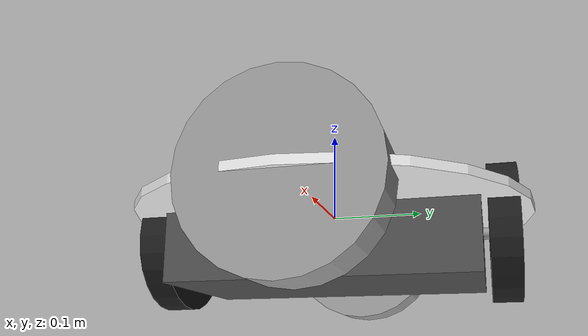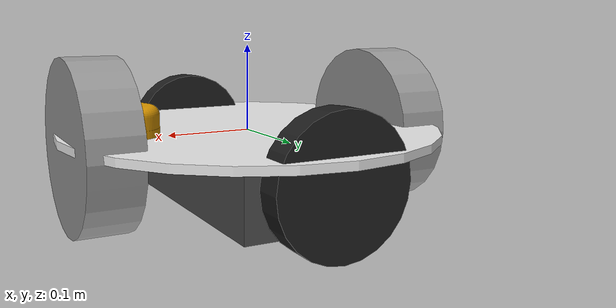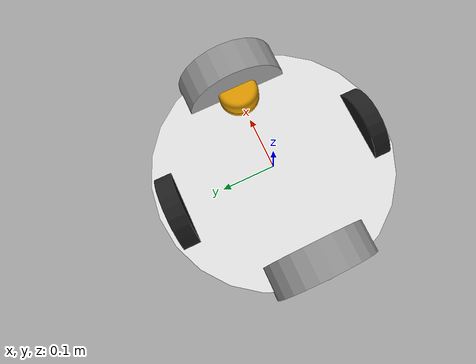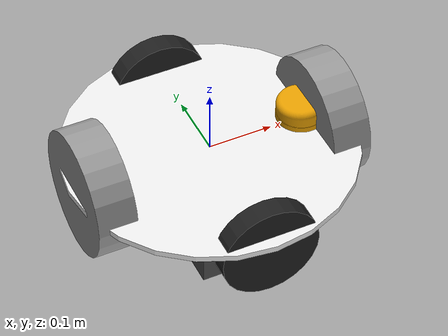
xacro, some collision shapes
<?xml version='1.0'?>

<robot name="myrobot" xmlns:xacro="http://www.ros.org/wiki/xacro">

  <xacro:include filename="$(find abrobot_description)/urdf/robot2.gazebo" />
  <xacro:include filename="$(find abrobot_description)/urdf/materials.xacro" />

  <!-- Base Robotic -->
  <link name="base_link">
    <inertial>
      <mass value="2" />
      <origin xyz="0 0 0.0" />
      <inertia ixx="0.01" ixy="0.0" ixz="0.0"
        iyy="0.01" iyz="0.0" izz="0.5" />
    </inertial>

      <visual>
        <origin xyz="0 0 0" rpy="0 0 0" />
        <geometry>
          <cylinder length="0.0095" radius="0.2245"/>
        </geometry>
        <material name ="White" />
      </visual>

      <collision>
        <origin xyz="0 0 0" rpy="0 0 0" />
        <geometry>
          <cylinder length="0.0095" radius="0.2245"/>
        </geometry>
      </collision>
  </link>

  <!-- Bateria -->
  <link name="battery_box">
    <inertial>
      <mass value="0.001" />
      <origin xyz="0 0 0" />
      <inertia ixx="0.0001" ixy="0.0" ixz="0.0"
        iyy="0.0001" iyz="0.0"
        izz="0.0001" />
    </inertial>

      <visual>
        <origin xyz="0 0 0" rpy="0 0 0" />
        <geometry>
          <box size="0.1778 0.3366 0.0762" />
        </geometry>
        <material name ="veryDarkGrey" />
      </visual>

      <collision>
        <origin xyz="0 0 0" rpy="0 0 0" />
        <geometry>
          <box size="0.1778 0.3366 0.0762" />
        </geometry>
      </collision>
  </link>

  <joint name="battery_box_joint" type="fixed">
    <origin xyz="0 0 -0.04285" rpy="0 0 0" />
    <parent link="base_link" />
    <child link="battery_box" />
  </joint>

  <!-- Roda Castor Frontal -->
  <link name="front_caster">
    <inertial>
      <mass value="0.001" />
      <origin xyz="0 0 0" />
      <inertia ixx="0.0001" ixy="0.0" ixz="0.0"
          iyy="0.0001" iyz="0.0"
          izz="0.0001" />
    </inertial>

      <visual>
        <origin xyz="0 0 0" rpy="-1.5707 0 1.5707" />
        <geometry>
          <mesh filename="package://abrobot_description/meshes/castor.dae"/>
        </geometry>
        <material name ="light_grey">
          <color rgba="0.6 0.6 0.6 1"/>
        </material>
      </visual>

      <collision>
        <origin xyz="0 0 0" rpy="-1.5707 0 1.5707" />
        <geometry>
          <cylinder length="0.0605" radius="0.097"/>
        </geometry>
      </collision>
  </link>

  <joint name="front_caster_joint" type="fixed">
    <origin xyz="0.18745 0 -0.00475" rpy="0 0 0" />
    <parent link="base_link" />
    <child link="front_caster" />
  </joint>

  <link name="rear_caster">
    <inertial>
      <mass value="0.001" />
      <origin xyz="0 0 0" />
      <inertia ixx="0.0001" ixy="0.0" ixz="0.0"
        iyy="0.0001" iyz="0.0"
        izz="0.0001" />
      </inertial>

      <visual>
        <origin xyz="0 0 0" rpy="-1.5707 0 1.5707" />
        <geometry>
          <mesh filename="package://abrobot_description/meshes/castor.dae"/>
        </geometry>
        <material name ="light_grey">
          <color rgba="0.6 0.6 0.6 1"/>
        </material>
      </visual>

      <collision>
        <origin xyz="0 0 0" rpy="-1.5707 0 1.5707" />
        <geometry>
          <cylinder length="0.0605" radius="0.097"/>
        </geometry>
      </collision>
  </link>

  <joint name="rear_caster_joint" type="fixed">
    <origin xyz="-0.18745 0 -0.00475" rpy="0 0 0" />
    <parent link="base_link" />
    <child link="rear_caster" />
  </joint>

  <link name="left_axle_link">
    <inertial>
      <origin xyz="0 0 0"/>
      <mass value="0.01" />
      <inertia ixx="0.001" ixy="0.0" ixz="0.0"
        iyy="0.001" iyz="0.0" izz="0.001" />
      </inertial>

      <visual>
        <origin xyz="0 0 0" rpy="0 1.5707 1.5707" />
        <geometry>
          <cylinder radius="0.00635" length = "0.00635"/>
        </geometry>
        <material name ="light_grey" />
      </visual>

      <collision>
        <origin xyz="0 0 0" rpy="0 1.5707 1.5707" />
        <geometry>
          <cylinder radius="0.00635" length = "0.00635"/>
        </geometry>
      </collision>
  </link>

  <joint name="left_axle_joint" type="fixed">
    <origin xyz="0 0.171475 0.017" rpy="0 0 0"/>
    <parent link="battery_box"/>
    <child link="left_axle_link"/>
    <axis xyz="0 1 0"/>
  </joint>

  <link name="right_axle_link">
    <inertial>
      <origin xyz="0 0 0"/>
      <mass value="0.01" />
      <inertia ixx="0.001" ixy="0.0" ixz="0.0"
        iyy="0.001" iyz="0.0" izz="0.001" />
      </inertial>

      <visual>
        <origin xyz="0 0 0" rpy="0 1.5707 1.5707" />
        <geometry>
          <cylinder radius="0.00635" length = "0.00635"/>
        </geometry>
        <material name ="light_grey" />
      </visual>

      <collision>
        <origin xyz="0 0 0" rpy="0 1.5707 1.5707" />
        <geometry>
          <cylinder radius="0.00635" length = "0.00635"/>
        </geometry>
      </collision>
  </link>

  <joint name="right_axle_joint" type="fixed">
    <origin xyz="0 -0.171475 0.017" rpy="0 0 0"/>
    <parent link="battery_box"/>
    <child link="right_axle_link"/>
    <axis xyz="0 1 0"/>
  </joint>

  <link name="left_wheel_link">
    <inertial>
      <origin xyz="0 0 0"/>
      <mass value="0.01" />
      <inertia ixx="0.001" ixy="0.0" ixz="0.0"
        iyy="0.001" iyz="0.0" izz="0.001" />
      </inertial>

      <visual>
        <origin xyz="0 0 0" rpy="0 1.5707 1.5707" />
        <geometry>
          <cylinder radius="0.0762" length = "0.03175"/>
        </geometry>
        <material name ="black" />
      </visual>

      <collision>
        <origin xyz="0 0 0" rpy="0 1.5707 1.5707" />
        <geometry>
          <cylinder radius="0.076" length = "0.03175"/>
        </geometry>
      </collision>
  </link>

  <joint name="left_wheel_joint" type="continuous">
    <origin xyz="0 0.01905 0" rpy="0 0 0"/>
    <parent link="left_axle_link"/>
    <child link="left_wheel_link"/>
    <axis xyz="0 1 0"/>
  </joint>

  <link name="right_wheel_link">
    <inertial>
      <origin xyz="0 0 0"/>
      <mass value="0.01" />
      <inertia ixx="0.001" ixy="0.0" ixz="0.0"
        iyy="0.001" iyz="0.0" izz="0.001" />
      </inertial>

      <visual>
        <origin xyz="0 0 0" rpy="0 1.5707 1.5707" />
        <geometry>
          <cylinder radius="0.0762" length = "0.03175"/>
        </geometry>
        <material name ="black" />
      </visual>

      <collision>
        <origin xyz="0 0 0" rpy="0 1.5707 1.5707" />
        <geometry>
          <cylinder radius="0.076" length = "0.03175"/>
        </geometry>
      </collision>
  </link>

  <!-- Fixed because we never rotate it anyway, it is just for show -->
  <!-- NOTE This may prevent gazebo from working with this model -->
  <joint name="right_wheel_joint" type="continuous">
    <origin xyz="0 -0.01905 0" rpy="0 0 0"/>
    <parent link="right_axle_link"/>
    <child link="right_wheel_link"/>
    <axis xyz="0 1 0"/>
  </joint>

  <!-- Rplidar Laser -->
  <link name="base_laser">
    <collision>
      <origin xyz="0 0 0" rpy="0 0 0"/>
      <geometry>
        <box size="0.1 0.1 0.1"/>
      </geometry>
    </collision>

    <visual>
      <origin xyz="0 0 -0.03" rpy="0 0 0"/>
      <geometry>
        <mesh filename="package://abrobot_description/meshes/rplidar.stl" scale="0.01 0.01 0.01" />
      </geometry>
    </visual>

    <inertial>
      <mass value="1e-5" />
      <origin xyz="0 0 0" rpy="0 0 0"/>
      <inertia ixx="1e-6" ixy="0" ixz="0" iyy="1e-6" iyz="0" izz="1e-6" />
    </inertial>
  </link>

  <joint name="laser_joint" type="fixed">
    <axis xyz="0 1 0" />
    <origin xyz=".15 0 .025" rpy="0 0 0"/>
    <parent link="base_link"/>
    <child link="base_laser"/>
  </joint>

</robot>
